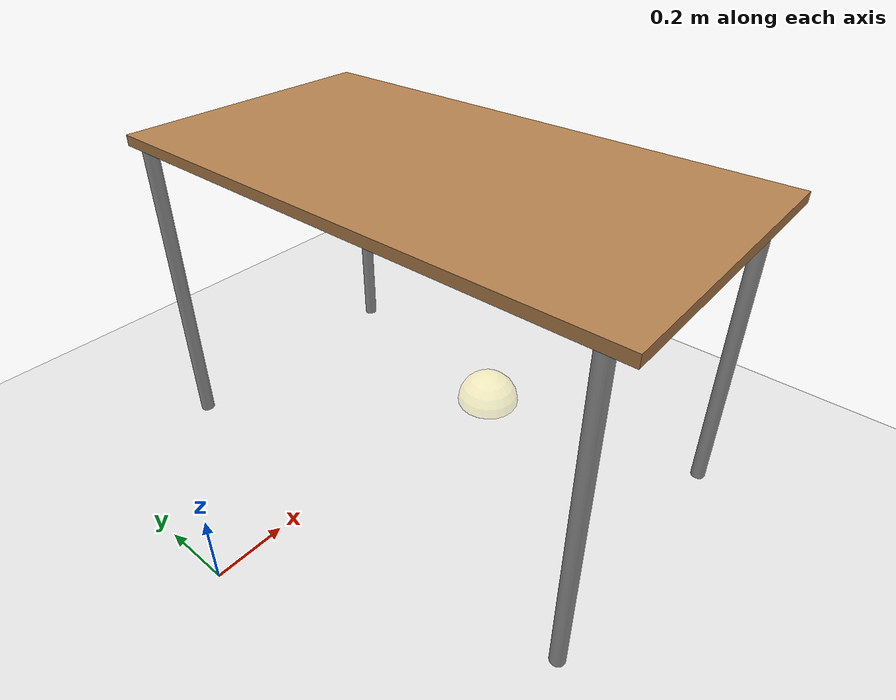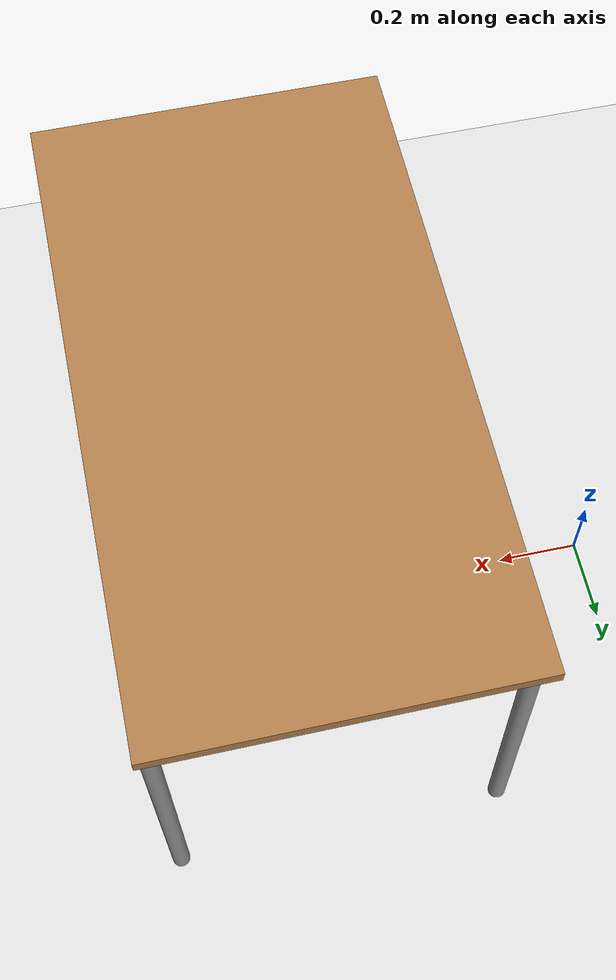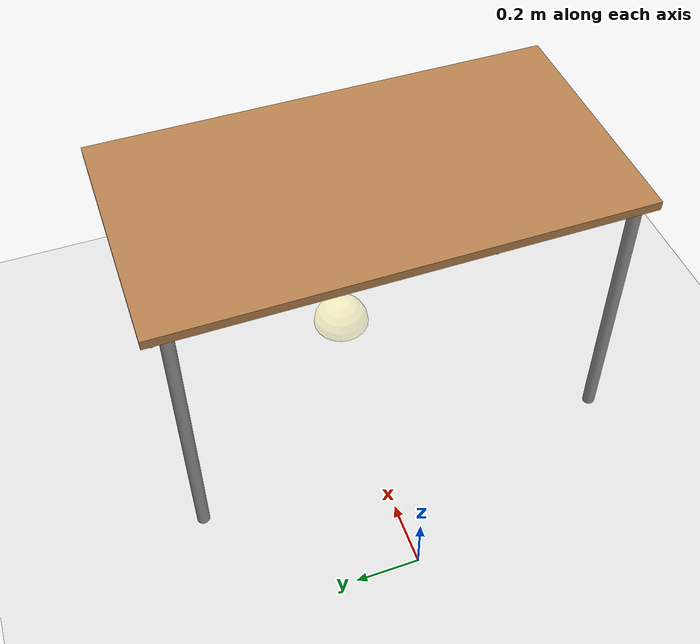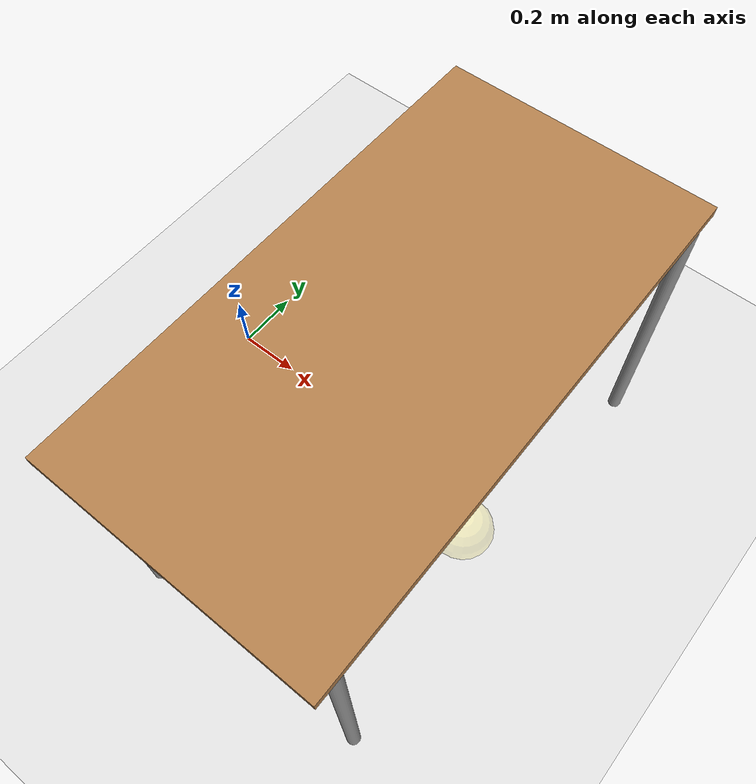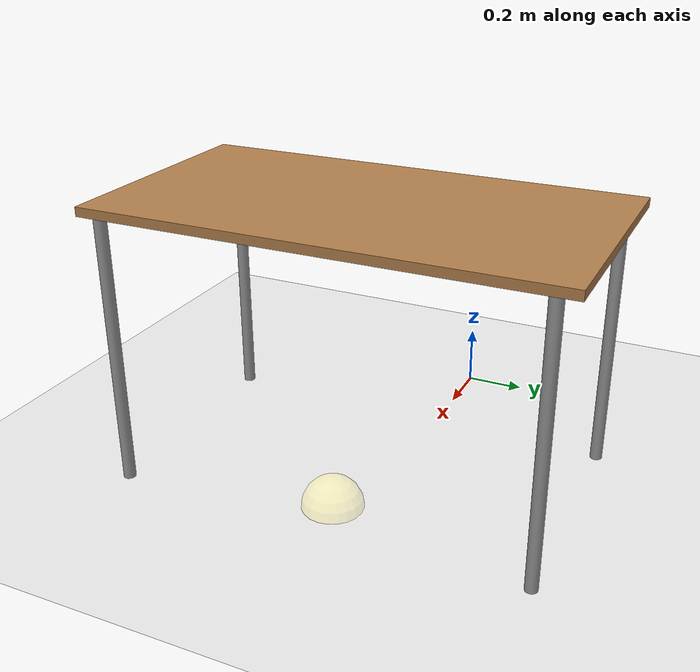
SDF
<sdf version="1.6">
 <world name="default">
  <scene><ambient>0.4 0.4 0.4 1</ambient><background>0.7 0.7 0.7 1</background><shadows>true</shadows></scene>
  <include><uri>model://ground_plane</uri></include>
  <include><pose>0.75 -0.1 0.0 0.0 0.0 1.5708</pose><uri>model://tableEdited</uri></include>
  <include><pose>1.0 -0.1 0.0 0.0 0.0 0.0</pose><uri>model://targetSphere</uri></include>
  <light type="directional" name="sun">
   <pose>0 0 10 0.0 -1.0 0</pose>
   <diffuse>0.8 0.8 0.8 1</diffuse>
   <specular>0.2 0.2 0.2 1</specular>
   <attenuation>
    <range>20</range>
    <constant>0.9</constant>
    <linear>0.01</linear>
    <quadratic>0.001</quadratic>
   </attenuation>
   <direction>-0.5 0.1 -0.9</direction>
  </light>
  <physics type="ode" name="split_unthrottled"><max_step_size>0.0012</max_step_size></physics>
 </world>
</sdf>

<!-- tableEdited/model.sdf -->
<sdf version='1.6'>
  <model name='tableEdited'>
    <link name='link'>
      <self_collide>0</self_collide>
      <enable_wind>0</enable_wind>
      <kinematic>0</kinematic>
      <pose frame=''>0 0 0 0 -0 0</pose>
      <gravity>1</gravity>
      <inertial>
        <mass>1</mass>
        <pose frame=''>0 0 0 0 -0 0</pose>
        <inertia>
          <ixx>1</ixx>
          <ixy>0</ixy>
          <ixz>0</ixz>
          <iyy>1</iyy>
          <iyz>0</iyz>
          <izz>1</izz>
        </inertia>
      </inertial>
      <visual name='visual1'>
        <pose frame=''>0 0 0.9 0 -0 0</pose>
        <geometry>
          <box>
            <size>1.5 0.8 0.03</size>
          </box>
        </geometry>
        <material>
          <script>
            <uri>file://media/materials/scripts/gazebo.material</uri>
            <name>Gazebo/Wood</name>
          </script>
          <ambient>0.1 0.1 0.1 1</ambient>
          <diffuse>1 1 1 1</diffuse>
          <specular>0.2 0.2 0.2 1</specular>
          <emissive>0 0 0 1</emissive>
        </material>
        <transparency>0</transparency>
        <cast_shadows>1</cast_shadows>
      </visual>
      <visual name='front_left_leg'>
        <pose frame=''>0.68 0.38 0.45 0 -0 0</pose>
        <geometry>
          <cylinder>
            <radius>0.02</radius>
            <length>0.9</length>
          </cylinder>
        </geometry>
        <material>
          <script>
            <uri>file://media/materials/scripts/gazebo.material</uri>
            <name>Gazebo/Grey</name>
          </script>
          <shader type='vertex'>
            <normal_map>__default__</normal_map>
          </shader>
          <ambient>0.3 0.3 0.3 1</ambient>
          <diffuse>0.7 0.7 0.7 1</diffuse>
          <specular>0.01 0.01 0.01 1</specular>
          <emissive>0 0 0 1</emissive>
        </material>
        <transparency>0</transparency>
        <cast_shadows>1</cast_shadows>
      </visual>
      <visual name='front_right_leg'>
        <pose frame=''>0.68 -0.38 0.45 0 -0 0</pose>
        <geometry>
          <cylinder>
            <radius>0.02</radius>
            <length>0.9</length>
          </cylinder>
        </geometry>
        <material>
          <script>
            <uri>file://media/materials/scripts/gazebo.material</uri>
            <name>Gazebo/Grey</name>
          </script>
          <shader type='vertex'>
            <normal_map>__default__</normal_map>
          </shader>
          <ambient>0.3 0.3 0.3 1</ambient>
          <diffuse>0.7 0.7 0.7 1</diffuse>
          <specular>0.01 0.01 0.01 1</specular>
          <emissive>0 0 0 1</emissive>
        </material>
        <transparency>0</transparency>
        <cast_shadows>1</cast_shadows>
      </visual>
      <visual name='back_right_leg'>
        <pose frame=''>-0.68 -0.38 0.45 0 -0 0</pose>
        <geometry>
          <cylinder>
            <radius>0.02</radius>
            <length>0.9</length>
          </cylinder>
        </geometry>
        <material>
          <script>
            <uri>file://media/materials/scripts/gazebo.material</uri>
            <name>Gazebo/Grey</name>
          </script>
          <shader type='vertex'>
            <normal_map>__default__</normal_map>
          </shader>
          <ambient>0.3 0.3 0.3 1</ambient>
          <diffuse>0.7 0.7 0.7 1</diffuse>
          <specular>0.01 0.01 0.01 1</specular>
          <emissive>0 0 0 1</emissive>
        </material>
        <transparency>0</transparency>
        <cast_shadows>1</cast_shadows>
      </visual>
      <visual name='back_left_leg'>
        <pose frame=''>-0.68 0.38 0.45 0 -0 0</pose>
        <geometry>
          <cylinder>
            <radius>0.02</radius>
            <length>0.9</length>
          </cylinder>
        </geometry>
        <material>
          <script>
            <uri>file://media/materials/scripts/gazebo.material</uri>
            <name>Gazebo/Grey</name>
          </script>
          <shader type='vertex'>
            <normal_map>__default__</normal_map>
          </shader>
          <ambient>0.3 0.3 0.3 1</ambient>
          <diffuse>0.7 0.7 0.7 1</diffuse>
          <specular>0.01 0.01 0.01 1</specular>
          <emissive>0 0 0 1</emissive>
        </material>
        <transparency>0</transparency>
        <cast_shadows>1</cast_shadows>
      </visual>
      <collision name='surface'>
        <laser_retro>0</laser_retro>
        <max_contacts>10</max_contacts>
        <pose frame=''>0 0 0.9 0 -0 0</pose>
        <geometry>
          <box>
            <size>1.5 0.8 0.03</size>
          </box>
        </geometry>
        <surface>
          <friction>
            <ode>
              <mu>0.6</mu>
              <mu2>0.6</mu2>
              <fdir1>0 0 0</fdir1>
              <slip1>0</slip1>
              <slip2>0</slip2>
            </ode>
            <torsional>
              <coefficient>1</coefficient>
              <patch_radius>0</patch_radius>
              <surface_radius>0</surface_radius>
              <use_patch_radius>1</use_patch_radius>
              <ode>
                <slip>0</slip>
              </ode>
            </torsional>
          </friction>
          <bounce>
            <restitution_coefficient>0</restitution_coefficient>
            <threshold>1e+06</threshold>
          </bounce>
          <contact>
            <collide_without_contact>0</collide_without_contact>
            <collide_without_contact_bitmask>1</collide_without_contact_bitmask>
            <collide_bitmask>1</collide_bitmask>
            <ode>
              <soft_cfm>0</soft_cfm>
              <soft_erp>0.2</soft_erp>
              <kp>1e+13</kp>
              <kd>1</kd>
              <max_vel>0.01</max_vel>
              <min_depth>0</min_depth>
            </ode>
            <bullet>
              <split_impulse>1</split_impulse>
              <split_impulse_penetration_threshold>-0.01</split_impulse_penetration_threshold>
              <soft_cfm>0</soft_cfm>
              <soft_erp>0.2</soft_erp>
              <kp>1e+13</kp>
              <kd>1</kd>
            </bullet>
          </contact>
        </surface>
      </collision>
      <collision name='front_left_leg'>
        <laser_retro>0</laser_retro>
        <max_contacts>10</max_contacts>
        <pose frame=''>0.68 0.38 0.45 0 -0 0</pose>
        <geometry>
          <cylinder>
            <radius>0.02</radius>
            <length>0.9</length>
          </cylinder>
        </geometry>
        <surface>
          <friction>
            <ode>
              <mu>1</mu>
              <mu2>1</mu2>
              <fdir1>0 0 0</fdir1>
              <slip1>0</slip1>
              <slip2>0</slip2>
            </ode>
            <torsional>
              <coefficient>1</coefficient>
              <patch_radius>0</patch_radius>
              <surface_radius>0</surface_radius>
              <use_patch_radius>1</use_patch_radius>
              <ode>
                <slip>0</slip>
              </ode>
            </torsional>
          </friction>
          <bounce>
            <restitution_coefficient>0</restitution_coefficient>
            <threshold>1e+06</threshold>
          </bounce>
          <contact>
            <collide_without_contact>0</collide_without_contact>
            <collide_without_contact_bitmask>1</collide_without_contact_bitmask>
            <collide_bitmask>1</collide_bitmask>
            <ode>
              <soft_cfm>0</soft_cfm>
              <soft_erp>0.2</soft_erp>
              <kp>1e+13</kp>
              <kd>1</kd>
              <max_vel>0.01</max_vel>
              <min_depth>0</min_depth>
            </ode>
            <bullet>
              <split_impulse>1</split_impulse>
              <split_impulse_penetration_threshold>-0.01</split_impulse_penetration_threshold>
              <soft_cfm>0</soft_cfm>
              <soft_erp>0.2</soft_erp>
              <kp>1e+13</kp>
              <kd>1</kd>
            </bullet>
          </contact>
        </surface>
      </collision>
      <collision name='front_right_leg'>
        <laser_retro>0</laser_retro>
        <max_contacts>10</max_contacts>
        <pose frame=''>0.68 -0.38 0.45 0 -0 0</pose>
        <geometry>
          <cylinder>
            <radius>0.02</radius>
            <length>0.9</length>
          </cylinder>
        </geometry>
        <surface>
          <friction>
            <ode>
              <mu>1</mu>
              <mu2>1</mu2>
              <fdir1>0 0 0</fdir1>
              <slip1>0</slip1>
              <slip2>0</slip2>
            </ode>
            <torsional>
              <coefficient>1</coefficient>
              <patch_radius>0</patch_radius>
              <surface_radius>0</surface_radius>
              <use_patch_radius>1</use_patch_radius>
              <ode>
                <slip>0</slip>
              </ode>
            </torsional>
          </friction>
          <bounce>
            <restitution_coefficient>0</restitution_coefficient>
            <threshold>1e+06</threshold>
          </bounce>
          <contact>
            <collide_without_contact>0</collide_without_contact>
            <collide_without_contact_bitmask>1</collide_without_contact_bitmask>
            <collide_bitmask>1</collide_bitmask>
            <ode>
              <soft_cfm>0</soft_cfm>
              <soft_erp>0.2</soft_erp>
              <kp>1e+13</kp>
              <kd>1</kd>
              <max_vel>0.01</max_vel>
              <min_depth>0</min_depth>
            </ode>
            <bullet>
              <split_impulse>1</split_impulse>
              <split_impulse_penetration_threshold>-0.01</split_impulse_penetration_threshold>
              <soft_cfm>0</soft_cfm>
              <soft_erp>0.2</soft_erp>
              <kp>1e+13</kp>
              <kd>1</kd>
            </bullet>
          </contact>
        </surface>
      </collision>
      <collision name='back_right_leg'>
        <laser_retro>0</laser_retro>
        <max_contacts>10</max_contacts>
        <pose frame=''>-0.68 -0.38 0.45 0 -0 0</pose>
        <geometry>
          <cylinder>
            <radius>0.02</radius>
            <length>0.9</length>
          </cylinder>
        </geometry>
        <surface>
          <friction>
            <ode>
              <mu>1</mu>
              <mu2>1</mu2>
              <fdir1>0 0 0</fdir1>
              <slip1>0</slip1>
              <slip2>0</slip2>
            </ode>
            <torsional>
              <coefficient>1</coefficient>
              <patch_radius>0</patch_radius>
              <surface_radius>0</surface_radius>
              <use_patch_radius>1</use_patch_radius>
              <ode>
                <slip>0</slip>
              </ode>
            </torsional>
          </friction>
          <bounce>
            <restitution_coefficient>0</restitution_coefficient>
            <threshold>1e+06</threshold>
          </bounce>
          <contact>
            <collide_without_contact>0</collide_without_contact>
            <collide_without_contact_bitmask>1</collide_without_contact_bitmask>
            <collide_bitmask>1</collide_bitmask>
            <ode>
              <soft_cfm>0</soft_cfm>
              <soft_erp>0.2</soft_erp>
              <kp>1e+13</kp>
              <kd>1</kd>
              <max_vel>0.01</max_vel>
              <min_depth>0</min_depth>
            </ode>
            <bullet>
              <split_impulse>1</split_impulse>
              <split_impulse_penetration_threshold>-0.01</split_impulse_penetration_threshold>
              <soft_cfm>0</soft_cfm>
              <soft_erp>0.2</soft_erp>
              <kp>1e+13</kp>
              <kd>1</kd>
            </bullet>
          </contact>
        </surface>
      </collision>
      <collision name='back_left_leg'>
        <laser_retro>0</laser_retro>
        <max_contacts>10</max_contacts>
        <pose frame=''>-0.68 0.38 0.45 0 -0 0</pose>
        <geometry>
          <cylinder>
            <radius>0.02</radius>
            <length>0.9</length>
          </cylinder>
        </geometry>
        <surface>
          <friction>
            <ode>
              <mu>1</mu>
              <mu2>1</mu2>
              <fdir1>0 0 0</fdir1>
              <slip1>0</slip1>
              <slip2>0</slip2>
            </ode>
            <torsional>
              <coefficient>1</coefficient>
              <patch_radius>0</patch_radius>
              <surface_radius>0</surface_radius>
              <use_patch_radius>1</use_patch_radius>
              <ode>
                <slip>0</slip>
              </ode>
            </torsional>
          </friction>
          <bounce>
            <restitution_coefficient>0</restitution_coefficient>
            <threshold>1e+06</threshold>
          </bounce>
          <contact>
            <collide_without_contact>0</collide_without_contact>
            <collide_without_contact_bitmask>1</collide_without_contact_bitmask>
            <collide_bitmask>1</collide_bitmask>
            <ode>
              <soft_cfm>0</soft_cfm>
              <soft_erp>0.2</soft_erp>
              <kp>1e+13</kp>
              <kd>1</kd>
              <max_vel>0.01</max_vel>
              <min_depth>0</min_depth>
            </ode>
            <bullet>
              <split_impulse>1</split_impulse>
              <split_impulse_penetration_threshold>-0.01</split_impulse_penetration_threshold>
              <soft_cfm>0</soft_cfm>
              <soft_erp>0.2</soft_erp>
              <kp>1e+13</kp>
              <kd>1</kd>
            </bullet>
          </contact>
        </surface>
      </collision>
    </link>
    <static>1</static>
    <allow_auto_disable>1</allow_auto_disable>
  </model>
</sdf>

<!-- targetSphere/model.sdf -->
<sdf version='1.6'>
  <model name='targetSphere'>
    <link name='link_1'>
      <inertial>
        <mass>1</mass>
        <inertia>
          <ixx>0.1</ixx>
          <ixy>0</ixy>
          <ixz>0</ixz>
          <iyy>0.1</iyy>
          <iyz>0</iyz>
          <izz>0.1</izz>
        </inertia>
        <pose frame=''>0 0 0 0 -0 0</pose>
      </inertial>
      <pose frame=''>0 0 0 0 -0 0</pose>
      <gravity>0</gravity>
      <self_collide>0</self_collide>
      <kinematic>1</kinematic>
      <enable_wind>0</enable_wind>
      <visual name='visual'>
        <pose frame=''>0 0 0 0 -0 0</pose>
        <geometry>
          <sphere>
            <radius>0.1</radius>
          </sphere>
        </geometry>
        <material>
          <lighting>1</lighting>
          <script>
            <uri>file://media/materials/scripts/gazebo.material</uri>
            <name>Gazebo/Grey</name>
          </script>
          <shader type='vertex'>
            <normal_map>__default__</normal_map>
          </shader>
          <ambient>0.988 0.914 0.31 0.3</ambient>
          <diffuse>0.988 0.914 0.31 0.3</diffuse>
          <specular>0.929 0.831 0 0.3</specular>
          <emissive>0.929 0.831 0 0.3</emissive>
        </material>
        <transparency>0.5</transparency>
        <cast_shadows>1</cast_shadows>
      </visual>
    </link>
    <static>0</static>
    <allow_auto_disable>1</allow_auto_disable>
    <plugin name='pose publisher' filename='libgazebo_yarp_modelposepublisher.so'></plugin>
  </model>
</sdf>
